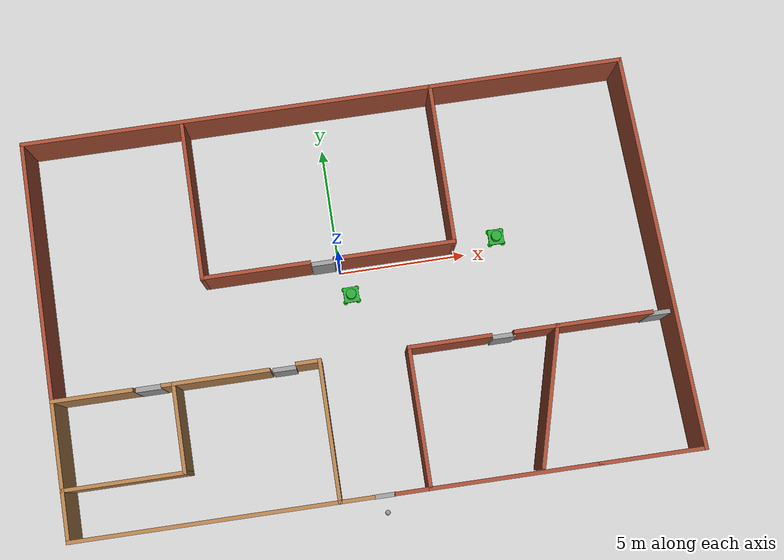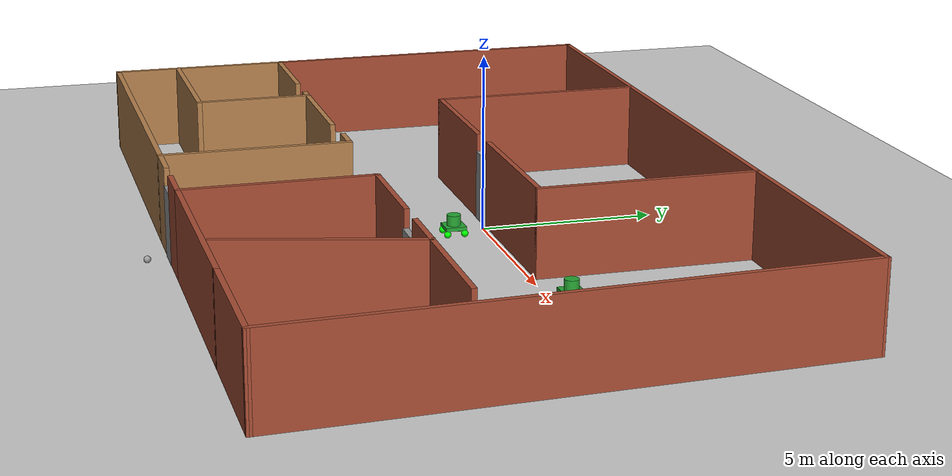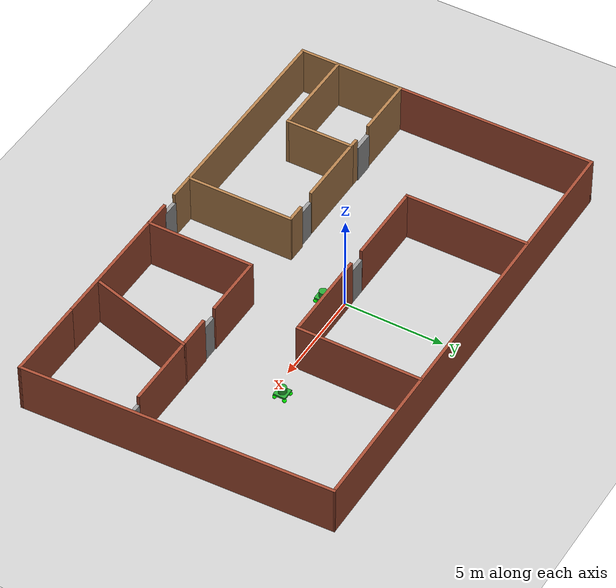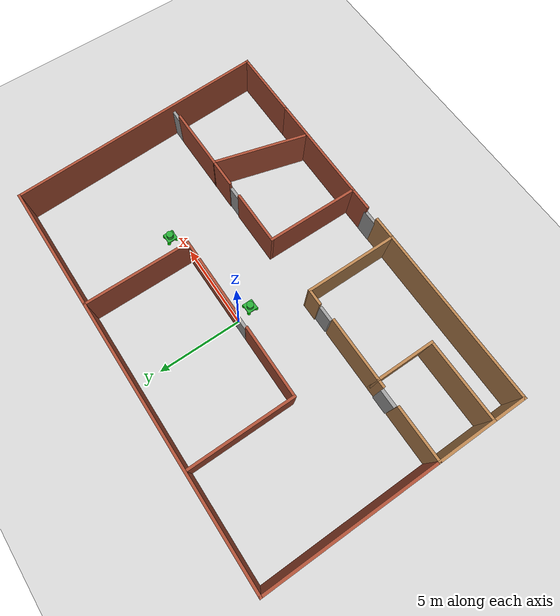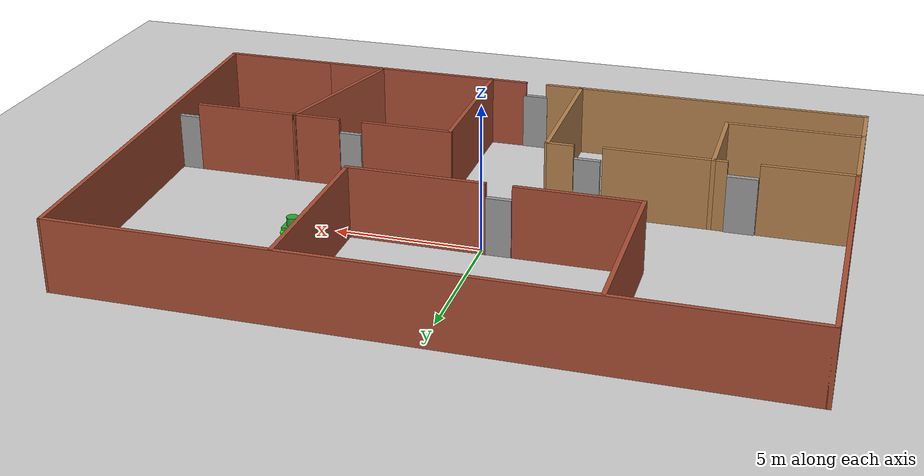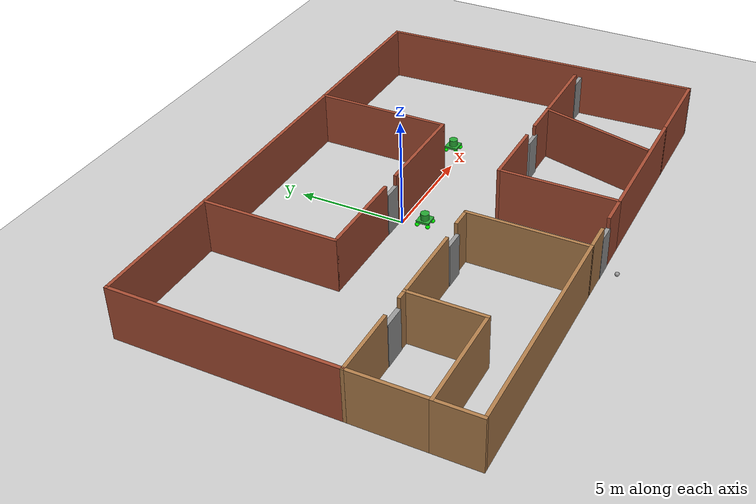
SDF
<sdf version="1.7">
 <world name="default">
  <plugin name="welcome_message" filename="libwelcome_message.so"/>
  <light name="sun" type="directional">
   <pose>0 0 10 0 -0 0</pose>
   <diffuse>0.8 0.8 0.8 1</diffuse>
   <specular>0.2 0.2 0.2 1</specular>
   <attenuation>
    <range>1000</range>
    <constant>0.9</constant>
    <linear>0.01</linear>
    <quadratic>0.001</quadratic>
   </attenuation>
   <direction>-0.5 0.1 -0.9</direction>
   <spot><inner_angle>0</inner_angle><outer_angle>0</outer_angle><falloff>0</falloff></spot>
  </light>
  <model name="ground_plane">
   <static>1</static>
   <link name="link">
    <collision name="collision">
     <geometry><plane><normal>0 0 1</normal><size>100 100</size></plane></geometry>
     <surface>
      <contact><collide_bitmask>65535</collide_bitmask></contact>
      <friction><ode><mu>100</mu><mu2>50</mu2></ode></friction>
     </surface>
    </collision>
    <visual name="visual">
     <cast_shadows>0</cast_shadows>
     <geometry><plane><normal>0 0 1</normal><size>100 100</size></plane></geometry>
     <material>
      <script><uri>file://media/materials/scripts/gazebo.material</uri><name>Gazebo/Grey</name></script>
     </material>
    </visual>
   </link>
  </model>
  <gravity>0 0 -9.8</gravity>
  <magnetic_field>6e-06 2.3e-05 -4.2e-05</magnetic_field>
  <atmosphere type="adiabatic"/>
  <physics type="ode">
   <max_step_size>0.001</max_step_size>
   <real_time_factor>1</real_time_factor>
   <real_time_update_rate>1000</real_time_update_rate>
  </physics>
  <scene><ambient>0.4 0.4 0.4 1</ambient><background>0.7 0.7 0.7 1</background><shadows>1</shadows></scene>
  <spherical_coordinates>
   <surface_model>EARTH_WGS84</surface_model>
   <latitude_deg>0</latitude_deg>
   <longitude_deg>0</longitude_deg>
   <elevation>0</elevation>
   <heading_deg>0</heading_deg>
  </spherical_coordinates>
  <model name="Building">
   <pose>0.56851 -1.28021 0 0 -0 0</pose>
   <link name="Door_0">
    <collision name="Door_0_Collision">
     <geometry><box><size>1.03059 0.2 2</size></box></geometry>
     <pose>0 0 1 0 -0 0</pose>
    </collision>
    <visual name="Door_0_Visual">
     <pose>0 0 1 0 -0 0</pose>
     <geometry><box><size>1.03059 0.2 2</size></box></geometry>
     <material>
      <script><uri>file://media/materials/scripts/gazebo.material</uri><name>Gazebo/Grey</name></script>
     </material>
    </visual>
    <pose>-8.38918 -2.3477 0 0 -0 0</pose>
   </link>
   <link name="Door_1">
    <collision name="Door_1_Collision">
     <geometry><box><size>0.9 0.17 2</size></box></geometry>
     <pose>0 0 1 0 -0 0</pose>
    </collision>
    <visual name="Door_1_Visual">
     <pose>0 0 1 0 -0 0</pose>
     <geometry><box><size>0.9 0.17 2</size></box></geometry>
     <material>
      <script><uri>file://media/materials/scripts/gazebo.material</uri><name>Gazebo/Grey</name></script>
     </material>
    </visual>
    <pose>-3.20947 -2.363 0 0 -0 0</pose>
   </link>
   <link name="Door_3">
    <collision name="Door_3_Collision">
     <geometry><box><size>0.9 0.17 2</size></box></geometry>
     <pose>0 0 1 0 -0 0</pose>
    </collision>
    <visual name="Door_3_Visual">
     <pose>0 0 1 0 -0 0</pose>
     <geometry><box><size>0.9 0.17 2</size></box></geometry>
     <material>
      <script><uri>file://media/materials/scripts/gazebo.material</uri><name>Gazebo/Grey</name></script>
     </material>
    </visual>
    <pose>-0.116131 -7.63713 0 0 -0 0</pose>
   </link>
   <link name="Door_4">
    <collision name="Door_4_Collision">
     <geometry><box><size>0.9 0.17 2</size></box></geometry>
     <pose>0 0 1 0 -0 0</pose>
    </collision>
    <visual name="Door_4_Visual">
     <pose>0 0 1 0 -0 0</pose>
     <geometry><box><size>0.9 0.17 2</size></box></geometry>
     <material>
      <script><uri>file://media/materials/scripts/gazebo.material</uri><name>Gazebo/Grey</name></script>
     </material>
    </visual>
    <pose>5.2614 -2.33035 0 0 -0 0</pose>
   </link>
   <link name="Door_5">
    <collision name="Door_5_Collision">
     <geometry><box><size>0.9 0.17 2</size></box></geometry>
     <pose>0 0 1 0 -0 0</pose>
    </collision>
    <visual name="Door_5_Visual">
     <pose>0 0 1 0 -0 0</pose>
     <geometry><box><size>0.9 0.17 2</size></box></geometry>
     <material>
      <script><uri>file://media/materials/scripts/gazebo.material</uri><name>Gazebo/Grey</name></script>
     </material>
    </visual>
    <pose>11.2932 -2.30572 0 0 -0 0</pose>
   </link>
   <link name="Door_6">
    <collision name="Door_6_Collision">
     <geometry><box><size>0.9 0.17 2</size></box></geometry>
     <pose>0 0 1 0 -0 0</pose>
    </collision>
    <visual name="Door_6_Visual">
     <pose>0 0 1 0 -0 0</pose>
     <geometry><box><size>0.9 0.17 2</size></box></geometry>
     <material>
      <script><uri>file://media/materials/scripts/gazebo.material</uri><name>Gazebo/Grey</name></script>
     </material>
    </visual>
    <pose>-1.17075 1.46324 0 0 -0 0</pose>
   </link>
   <link name="Wall_0">
    <collision name="Wall_0_Collision">
     <geometry><box><size>10.15 0.15 2.5</size></box></geometry>
     <pose>0 0 1.25 0 -0 0</pose>
    </collision>
    <visual name="Wall_0_Visual">
     <pose>0 0 1.25 0 -0 0</pose>
     <geometry><box><size>10.15 0.15 2.5</size></box></geometry>
     <material>
      <script><uri>file://media/materials/scripts/gazebo.material</uri><name>Gazebo/Bricks</name></script>
      <ambient>1 1 1 1</ambient>
     </material>
     <meta><layer>0</layer></meta>
    </visual>
    <pose>-12.0015 2.637 0 0 -0 1.5708</pose>
   </link>
   <link name="Wall_10">
    <collision name="Wall_10_Collision">
     <geometry><box><size>3.5 0.15 2.5</size></box></geometry>
     <pose>0 0 1.25 0 -0 0</pose>
    </collision>
    <visual name="Wall_10_Visual">
     <pose>0 0 1.25 0 -0 0</pose>
     <geometry><box><size>3.5 0.15 2.5</size></box></geometry>
     <material>
      <script><uri>file://media/materials/scripts/gazebo.material</uri><name>Gazebo/Wood</name></script>
      <ambient>1 1 1 1</ambient>
     </material>
     <meta><layer>0</layer></meta>
    </visual>
    <pose>-7.40147 -4.038 0 0 -0 -1.5708</pose>
   </link>
   <link name="Wall_11">
    <collision name="Wall_11_Collision">
     <geometry><box><size>4.75 0.15 2.5</size></box></geometry>
     <pose>0 0 1.25 0 -0 0</pose>
    </collision>
    <visual name="Wall_11_Visual">
     <pose>0 0 1.25 0 -0 0</pose>
     <geometry><box><size>4.75 0.15 2.5</size></box></geometry>
     <material>
      <script><uri>file://media/materials/scripts/gazebo.material</uri><name>Gazebo/Wood</name></script>
      <ambient>1 1 1 1</ambient>
     </material>
     <meta><layer>0</layer></meta>
    </visual>
    <pose>-9.70147 -5.713 0 0 -0 3.14159</pose>
   </link>
   <link name="Wall_12">
    <collision name="Wall_12_Collision">
     <geometry><box><size>3.5 0.15 2.5</size></box></geometry>
     <pose>0 0 1.25 0 -0 0</pose>
    </collision>
    <visual name="Wall_12_Visual">
     <pose>0 0 1.25 0 -0 0</pose>
     <geometry><box><size>3.5 0.15 2.5</size></box></geometry>
     <material>
      <script><uri>file://media/materials/scripts/gazebo.material</uri><name>Gazebo/Wood</name></script>
      <ambient>1 1 1 1</ambient>
     </material>
     <meta><layer>0</layer></meta>
    </visual>
    <pose>-12.0015 -4.038 0 0 -0 1.5708</pose>
   </link>
   <link name="Wall_14">
    <collision name="Wall_14_Collision">
     <geometry><box><size>3.75 0.15 2.5</size></box></geometry>
     <pose>0 0 1.25 0 -0 0</pose>
    </collision>
    <visual name="Wall_14_Visual">
     <pose>0 0 1.25 0 -0 0</pose>
     <geometry><box><size>3.75 0.15 2.5</size></box></geometry>
     <material>
      <script><uri>file://media/materials/scripts/gazebo.material</uri><name>Gazebo/Wood</name></script>
      <ambient>1 1 1 1</ambient>
     </material>
     <meta><layer>0</layer></meta>
    </visual>
    <pose>-5.60147 -2.363 0 0 -0 0</pose>
   </link>
   <link name="Wall_16">
    <collision name="Wall_16_Collision">
     <geometry><box><size>1 0.15 2.5</size></box></geometry>
     <pose>0 0 1.25 0 -0 0</pose>
    </collision>
    <visual name="Wall_16_Visual">
     <pose>0 0 1.25 0 -0 0</pose>
     <geometry><box><size>1 0.15 2.5</size></box></geometry>
     <material>
      <script><uri>file://media/materials/scripts/gazebo.material</uri><name>Gazebo/Wood</name></script>
      <ambient>1 1 1 1</ambient>
     </material>
     <meta><layer>0</layer></meta>
    </visual>
    <pose>-2.26166 -2.28491 0 0 -0 -0.000212</pose>
   </link>
   <link name="Wall_17">
    <collision name="Wall_17_Collision">
     <geometry><box><size>5.5 0.15 2.5</size></box></geometry>
     <pose>0 0 1.25 0 -0 0</pose>
    </collision>
    <visual name="Wall_17_Visual">
     <pose>0 0 1.25 0 -0 0</pose>
     <geometry><box><size>5.5 0.15 2.5</size></box></geometry>
     <material>
      <script><uri>file://media/materials/scripts/gazebo.material</uri><name>Gazebo/Wood</name></script>
      <ambient>1 1 1 1</ambient>
     </material>
     <meta><layer>0</layer></meta>
    </visual>
    <pose>-1.83397 -4.96 0 0 -0 -1.56986</pose>
   </link>
   <link name="Wall_18">
    <collision name="Wall_18_Collision">
     <geometry><box><size>10.32 0.15 2.5</size></box></geometry>
     <pose>0 0 1.25 0 -0 0</pose>
    </collision>
    <visual name="Wall_18_Visual">
     <pose>0 0 1.25 0 -0 0</pose>
     <geometry><box><size>10.32 0.15 2.5</size></box></geometry>
     <material>
      <script><uri>file://media/materials/scripts/gazebo.material</uri><name>Gazebo/Wood</name></script>
      <ambient>1 1 1 1</ambient>
     </material>
     <meta><layer>0</layer></meta>
    </visual>
    <pose>-6.91647 -7.635 0 0 -0 3.14159</pose>
   </link>
   <link name="Wall_19">
    <collision name="Wall_19_Collision">
     <geometry><box><size>2.07291 0.15 2.5</size></box></geometry>
     <pose>0 0 1.25 0 -0 0</pose>
    </collision>
    <visual name="Wall_19_Visual">
     <pose>0 0 1.25 0 -0 0</pose>
     <geometry><box><size>2.07291 0.15 2.5</size></box></geometry>
     <material>
      <script><uri>file://media/materials/scripts/gazebo.material</uri><name>Gazebo/Wood</name></script>
      <ambient>1 1 1 1</ambient>
     </material>
     <meta><layer>0</layer></meta>
    </visual>
    <pose>-12.0015 -6.674 0 0 -0 1.5708</pose>
   </link>
   <link name="Wall_2">
    <collision name="Wall_2_Collision">
     <geometry><box><size>3.15035 0.15 2.5</size></box></geometry>
     <pose>0 0 1.25 0 -0 0</pose>
    </collision>
    <visual name="Wall_2_Visual">
     <pose>0 0 1.25 0 -0 0</pose>
     <geometry><box><size>3.15035 0.15 2.5</size></box></geometry>
     <material>
      <script><uri>file://media/materials/scripts/gazebo.material</uri><name>Gazebo/Wood</name></script>
      <ambient>1 1 1 1</ambient>
     </material>
     <meta><layer>0</layer></meta>
    </visual>
    <pose>-10.5015 -2.363 0 0 -0 0</pose>
   </link>
   <link name="Wall_21">
    <collision name="Wall_21_Collision">
     <geometry><box><size>5.49787 0.15 2.5</size></box></geometry>
     <pose>0 0 1.25 0 -0 0</pose>
    </collision>
    <visual name="Wall_21_Visual">
     <pose>0 0 1.25 0 -0 0</pose>
     <geometry><box><size>5.49787 0.15 2.5</size></box></geometry>
     <material>
      <script><uri>file://media/materials/scripts/gazebo.material</uri><name>Gazebo/Bricks</name></script>
      <ambient>1 1 1 1</ambient>
     </material>
     <meta><layer>0</layer></meta>
    </visual>
    <pose>1.58253 -4.961 0 0 -0 1.5708</pose>
   </link>
   <link name="Wall_22">
    <collision name="Wall_22_Collision">
     <geometry><box><size>3.25 0.15 2.5</size></box></geometry>
     <pose>0 0 1.25 0 -0 0</pose>
    </collision>
    <visual name="Wall_22_Visual">
     <pose>0 0 1.25 0 -0 0</pose>
     <geometry><box><size>3.25 0.15 2.5</size></box></geometry>
     <material>
      <script><uri>file://media/materials/scripts/gazebo.material</uri><name>Gazebo/Bricks</name></script>
      <ambient>1 1 1 1</ambient>
     </material>
     <meta><layer>0</layer></meta>
    </visual>
    <pose>3.13228 -2.28707 0 0 -0 -4.2e-05</pose>
   </link>
   <link name="Wall_24">
    <collision name="Wall_24_Collision">
     <geometry><box><size>1.395 0.15 2.5</size></box></geometry>
     <pose>0 0 1.25 0 -0 0</pose>
    </collision>
    <visual name="Wall_24_Visual">
     <pose>0 0 1.25 0 -0 0</pose>
     <geometry><box><size>1.395 0.15 2.5</size></box></geometry>
     <material>
      <script><uri>file://media/materials/scripts/gazebo.material</uri><name>Gazebo/Wood</name></script>
      <ambient>1 1 1 1</ambient>
     </material>
     <meta><layer>0</layer></meta>
    </visual>
    <pose>-1.20897 -7.635 0 0 -0 0</pose>
   </link>
   <link name="Wall_26">
    <collision name="Wall_26_Collision">
     <geometry><box><size>1.42412 0.15 2.5</size></box></geometry>
     <pose>0 0 1.25 0 -0 0</pose>
    </collision>
    <visual name="Wall_26_Visual">
     <pose>0 0 1.25 0 -0 0</pose>
     <geometry><box><size>1.42412 0.15 2.5</size></box></geometry>
     <material>
      <script><uri>file://media/materials/scripts/gazebo.material</uri><name>Gazebo/Bricks</name></script>
      <ambient>1 1 1 1</ambient>
     </material>
     <meta><layer>0</layer></meta>
    </visual>
    <pose>0.945527 -7.636 0 0 -0 0.00157</pose>
   </link>
   <link name="Wall_28">
    <collision name="Wall_28_Collision">
     <geometry><box><size>1.75 0.15 2.5</size></box></geometry>
     <pose>0 0 1.25 0 -0 0</pose>
    </collision>
    <visual name="Wall_28_Visual">
     <pose>0 0 1.25 0 -0 0</pose>
     <geometry><box><size>1.75 0.15 2.5</size></box></geometry>
     <material>
      <script><uri>file://media/materials/scripts/gazebo.material</uri><name>Gazebo/Bricks</name></script>
      <ambient>1 1 1 1</ambient>
     </material>
     <meta><layer>0</layer></meta>
    </visual>
    <pose>6.46195 -2.28758 0 0 -0 0</pose>
   </link>
   <link name="Wall_30">
    <collision name="Wall_30_Collision">
     <geometry><box><size>6.5664 0.15 2.5</size></box></geometry>
     <pose>0 0 1.25 0 -0 0</pose>
    </collision>
    <visual name="Wall_30_Visual">
     <pose>0 0 1.25 0 -0 0</pose>
     <geometry><box><size>6.5664 0.15 2.5</size></box></geometry>
     <material>
      <script><uri>file://media/materials/scripts/gazebo.material</uri><name>Gazebo/Bricks</name></script>
      <ambient>1 1 1 1</ambient>
     </material>
     <meta><layer>0</layer></meta>
    </visual>
    <pose>4.79053 -7.636 0 0 -0 -0.000312</pose>
   </link>
   <link name="Wall_32">
    <collision name="Wall_32_Collision">
     <geometry><box><size>5.5 0.15 2.5</size></box></geometry>
     <pose>0 0 1.25 0 -0 0</pose>
    </collision>
    <visual name="Wall_32_Visual">
     <pose>0 0 1.25 0 -0 0</pose>
     <geometry><box><size>5.5 0.15 2.5</size></box></geometry>
     <material>
      <script><uri>file://media/materials/scripts/gazebo.material</uri><name>Gazebo/Bricks</name></script>
      <ambient>1 1 1 1</ambient>
     </material>
     <meta><layer>0</layer></meta>
    </visual>
    <pose>6.56961 -4.87143 0 0 -0 -1.8326</pose>
   </link>
   <link name="Wall_34">
    <collision name="Wall_34_Collision">
     <geometry><box><size>23.5 0.15 2.5</size></box></geometry>
     <pose>0 0 1.25 0 -0 0</pose>
    </collision>
    <visual name="Wall_34_Visual">
     <pose>0 0 1.25 0 -0 0</pose>
     <geometry><box><size>23.5 0.15 2.5</size></box></geometry>
     <material>
      <script><uri>file://media/materials/scripts/gazebo.material</uri><name>Gazebo/Bricks</name></script>
      <ambient>1 1 1 1</ambient>
     </material>
     <meta><layer>0</layer></meta>
    </visual>
    <pose>-0.326473 7.637 0 0 -0 0</pose>
   </link>
   <link name="Wall_35">
    <collision name="Wall_35_Collision">
     <geometry><box><size>15.4378 0.15 2.5</size></box></geometry>
     <pose>0 0 1.25 0 -0 0</pose>
    </collision>
    <visual name="Wall_35_Visual">
     <pose>0 0 1.25 0 -0 0</pose>
     <geometry><box><size>15.4378 0.15 2.5</size></box></geometry>
     <material>
      <script><uri>file://media/materials/scripts/gazebo.material</uri><name>Gazebo/Bricks</name></script>
      <ambient>1 1 1 1</ambient>
     </material>
     <meta><layer>0</layer></meta>
    </visual>
    <pose>11.6735 -0 0 0 -0 -1.52827</pose>
   </link>
   <link name="Wall_36">
    <collision name="Wall_36_Collision">
     <geometry><box><size>4.15 0.15 2.5</size></box></geometry>
     <pose>0 0 1.25 0 -0 0</pose>
    </collision>
    <visual name="Wall_36_Visual">
     <pose>0 0 1.25 0 -0 0</pose>
     <geometry><box><size>4.15 0.15 2.5</size></box></geometry>
     <material>
      <script><uri>file://media/materials/scripts/gazebo.material</uri><name>Gazebo/Bricks</name></script>
      <ambient>1 1 1 1</ambient>
     </material>
     <meta><layer>0</layer></meta>
    </visual>
    <pose>9.99853 -7.637 0 0 -0 3.14159</pose>
   </link>
   <link name="Wall_39">
    <collision name="Wall_39_Collision">
     <geometry><box><size>3.75 0.15 2.5</size></box></geometry>
     <pose>0 0 1.25 0 -0 0</pose>
    </collision>
    <visual name="Wall_39_Visual">
     <pose>0 0 1.25 0 -0 0</pose>
     <geometry><box><size>3.75 0.15 2.5</size></box></geometry>
     <material>
      <script><uri>file://media/materials/scripts/gazebo.material</uri><name>Gazebo/Bricks</name></script>
      <ambient>1 1 1 1</ambient>
     </material>
     <meta><layer>0</layer></meta>
    </visual>
    <pose>9.06195 -2.28758 0 0 -0 0</pose>
   </link>
   <link name="Wall_4">
    <collision name="Wall_4_Collision">
     <geometry><box><size>0.55 0.15 2.5</size></box></geometry>
     <pose>0 0 1.25 0 -0 0</pose>
    </collision>
    <visual name="Wall_4_Visual">
     <pose>0 0 1.25 0 -0 0</pose>
     <geometry><box><size>0.55 0.15 2.5</size></box></geometry>
     <material>
      <script><uri>file://media/materials/scripts/gazebo.material</uri><name>Gazebo/Wood</name></script>
      <ambient>1 1 1 1</ambient>
     </material>
     <meta><layer>0</layer></meta>
    </visual>
    <pose>-7.60147 -2.363 0 0 -0 0</pose>
   </link>
   <link name="Wall_41">
    <collision name="Wall_41_Collision">
     <geometry><box><size>6.25 0.15 2.5</size></box></geometry>
     <pose>0 0 1.25 0 -0 0</pose>
    </collision>
    <visual name="Wall_41_Visual">
     <pose>0 0 1.25 0 -0 0</pose>
     <geometry><box><size>6.25 0.15 2.5</size></box></geometry>
     <material>
      <script><uri>file://media/materials/scripts/gazebo.material</uri><name>Gazebo/Bricks</name></script>
      <ambient>1 1 1 1</ambient>
     </material>
     <meta><layer>0</layer></meta>
    </visual>
    <pose>-5.81016 4.52152 0 0 -0 -1.5708</pose>
   </link>
   <link name="Wall_42">
    <collision name="Wall_42_Collision">
     <geometry><box><size>4.25 0.15 2.5</size></box></geometry>
     <pose>0 0 1.25 0 -0 0</pose>
    </collision>
    <visual name="Wall_42_Visual">
     <pose>0 0 1.25 0 -0 0</pose>
     <geometry><box><size>4.25 0.15 2.5</size></box></geometry>
     <material>
      <script><uri>file://media/materials/scripts/gazebo.material</uri><name>Gazebo/Bricks</name></script>
      <ambient>1 1 1 1</ambient>
     </material>
     <meta><layer>0</layer></meta>
    </visual>
    <pose>-3.76016 1.47152 0 0 -0 0</pose>
   </link>
   <link name="Wall_44">
    <collision name="Wall_44_Collision">
     <geometry><box><size>4.75 0.15 2.5</size></box></geometry>
     <pose>0 0 1.25 0 -0 0</pose>
    </collision>
    <visual name="Wall_44_Visual">
     <pose>0 0 1.25 0 -0 0</pose>
     <geometry><box><size>4.75 0.15 2.5</size></box></geometry>
     <material>
      <script><uri>file://media/materials/scripts/gazebo.material</uri><name>Gazebo/Bricks</name></script>
      <ambient>1 1 1 1</ambient>
     </material>
     <meta><layer>0</layer></meta>
    </visual>
    <pose>1.60457 1.48482 0 0 -0 0</pose>
   </link>
   <link name="Wall_45">
    <collision name="Wall_45_Collision">
     <geometry><box><size>6.25 0.15 2.5</size></box></geometry>
     <pose>0 0 1.25 0 -0 0</pose>
    </collision>
    <visual name="Wall_45_Visual">
     <pose>0 0 1.25 0 -0 0</pose>
     <geometry><box><size>6.25 0.15 2.5</size></box></geometry>
     <material>
      <script><uri>file://media/materials/scripts/gazebo.material</uri><name>Gazebo/Bricks</name></script>
      <ambient>1 1 1 1</ambient>
     </material>
     <meta><layer>0</layer></meta>
    </visual>
    <pose>3.90457 4.53482 0 0 -0 1.5708</pose>
   </link>
   <static>1</static>
  </model>
  <model name="HumanoidRobot_0">
   <link name="link_0">
    <inertial>
     <mass>1</mass>
     <inertia>
      <ixx>0.166667</ixx>
      <ixy>0</ixy>
      <ixz>0</ixz>
      <iyy>0.166667</iyy>
      <iyz>0</iyz>
      <izz>0.166667</izz>
     </inertia>
    </inertial>
    <pose>0 0 0.066667 0 -0 0</pose>
    <visual name="visual">
     <geometry><box><size>0.6 0.6 0.1</size></box></geometry>
     <material>
      <lighting>1</lighting>
      <script><uri>file://media/materials/scripts/gazebo.material</uri><name>Gazebo/Green</name></script>
      <shader type="pixel"><normal_map>__default__</normal_map></shader>
      <ambient>0 1 0 1</ambient>
      <diffuse>0.7 0.7 0.7 1</diffuse>
      <specular>0.01 0.01 0.01 1</specular>
      <emissive>0 0 0 1</emissive>
     </material>
    </visual>
    <collision name="collision">
     <geometry><box><size>0.6 0.6 0.1</size></box></geometry>
     <surface>
      <friction>
       <ode><mu>1</mu><mu2>1</mu2><fdir1>0 0 0</fdir1><slip1>0</slip1><slip2>0</slip2></ode>
       <torsional>
        <coefficient>1</coefficient>
        <patch_radius>0</patch_radius>
        <surface_radius>0</surface_radius>
        <use_patch_radius>1</use_patch_radius>
        <ode><slip>0</slip></ode>
       </torsional>
      </friction>
      <bounce><restitution_coefficient>0</restitution_coefficient><threshold>1e+06</threshold></bounce>
      <contact>
       <collide_without_contact>0</collide_without_contact>
       <collide_without_contact_bitmask>1</collide_without_contact_bitmask>
       <collide_bitmask>1</collide_bitmask>
       <ode>
        <soft_cfm>0</soft_cfm>
        <soft_erp>0.2</soft_erp>
        <kp>1e+13</kp>
        <kd>1</kd>
        <max_vel>0.01</max_vel>
        <min_depth>0</min_depth>
       </ode>
       <bullet>
        <split_impulse>1</split_impulse>
        <split_impulse_penetration_threshold>-0.01</split_impulse_penetration_threshold>
        <soft_cfm>0</soft_cfm>
        <soft_erp>0.2</soft_erp>
        <kp>1e+13</kp>
        <kd>1</kd>
       </bullet>
      </contact>
     </surface>
    </collision>
   </link>
   <link name="link_1">
    <inertial>
     <mass>1</mass>
     <inertia><ixx>0.1</ixx><ixy>0</ixy><ixz>0</ixz><iyy>0.1</iyy><iyz>0</iyz><izz>0.1</izz></inertia>
    </inertial>
    <pose>0.25 0.25 -0.083333 0 -0 0</pose>
    <visual name="visual">
     <geometry><sphere><radius>0.1</radius></sphere></geometry>
     <material>
      <lighting>1</lighting>
      <script><uri>file://media/materials/scripts/gazebo.material</uri><name>Gazebo/Grey</name></script>
      <shader type="pixel"><normal_map>__default__</normal_map></shader>
      <ambient>0 1 0 1</ambient>
      <diffuse>0.7 0.7 0.7 1</diffuse>
      <specular>0.01 0.01 0.01 1</specular>
      <emissive>0 0 0 1</emissive>
     </material>
    </visual>
    <collision name="collision">
     <geometry><sphere><radius>0.1</radius></sphere></geometry>
     <surface>
      <friction>
       <ode><mu>1</mu><mu2>1</mu2><fdir1>0 0 0</fdir1><slip1>0</slip1><slip2>0</slip2></ode>
       <torsional>
        <coefficient>1</coefficient>
        <patch_radius>0</patch_radius>
        <surface_radius>0</surface_radius>
        <use_patch_radius>1</use_patch_radius>
        <ode><slip>0</slip></ode>
       </torsional>
      </friction>
      <bounce><restitution_coefficient>0</restitution_coefficient><threshold>1e+06</threshold></bounce>
      <contact>
       <collide_without_contact>0</collide_without_contact>
       <collide_without_contact_bitmask>1</collide_without_contact_bitmask>
       <collide_bitmask>1</collide_bitmask>
       <ode>
        <soft_cfm>0</soft_cfm>
        <soft_erp>0.2</soft_erp>
        <kp>1e+13</kp>
        <kd>1</kd>
        <max_vel>0.01</max_vel>
        <min_depth>0</min_depth>
       </ode>
       <bullet>
        <split_impulse>1</split_impulse>
        <split_impulse_penetration_threshold>-0.01</split_impulse_penetration_threshold>
        <soft_cfm>0</soft_cfm>
        <soft_erp>0.2</soft_erp>
        <kp>1e+13</kp>
        <kd>1</kd>
       </bullet>
      </contact>
     </surface>
    </collision>
   </link>
   <link name="link_1_clone">
    <inertial>
     <mass>1</mass>
     <inertia><ixx>0.1</ixx><ixy>0</ixy><ixz>0</ixz><iyy>0.1</iyy><iyz>0</iyz><izz>0.1</izz></inertia>
    </inertial>
    <pose>0.25 -0.25 -0.083333 0 -0 0</pose>
    <visual name="visual">
     <geometry><sphere><radius>0.1</radius></sphere></geometry>
     <material>
      <lighting>1</lighting>
      <script><uri>file://media/materials/scripts/gazebo.material</uri><name>Gazebo/Grey</name></script>
      <shader type="pixel"><normal_map>__default__</normal_map></shader>
      <ambient>0 1 0 1</ambient>
      <diffuse>0.7 0.7 0.7 1</diffuse>
      <specular>0.01 0.01 0.01 1</specular>
      <emissive>0 0 0 1</emissive>
     </material>
    </visual>
    <collision name="collision">
     <geometry><sphere><radius>0.1</radius></sphere></geometry>
     <surface>
      <friction>
       <ode><mu>1</mu><mu2>1</mu2><fdir1>0 0 0</fdir1><slip1>0</slip1><slip2>0</slip2></ode>
       <torsional>
        <coefficient>1</coefficient>
        <patch_radius>0</patch_radius>
        <surface_radius>0</surface_radius>
        <use_patch_radius>1</use_patch_radius>
        <ode><slip>0</slip></ode>
       </torsional>
      </friction>
      <bounce><restitution_coefficient>0</restitution_coefficient><threshold>1e+06</threshold></bounce>
      <contact>
       <collide_without_contact>0</collide_without_contact>
       <collide_without_contact_bitmask>1</collide_without_contact_bitmask>
       <collide_bitmask>1</collide_bitmask>
       <ode>
        <soft_cfm>0</soft_cfm>
        <soft_erp>0.2</soft_erp>
        <kp>1e+13</kp>
        <kd>1</kd>
        <max_vel>0.01</max_vel>
        <min_depth>0</min_depth>
       </ode>
       <bullet>
        <split_impulse>1</split_impulse>
        <split_impulse_penetration_threshold>-0.01</split_impulse_penetration_threshold>
        <soft_cfm>0</soft_cfm>
        <soft_erp>0.2</soft_erp>
        <kp>1e+13</kp>
        <kd>1</kd>
       </bullet>
      </contact>
     </surface>
    </collision>
   </link>
   <link name="link_1_clone_clone">
    <inertial>
     <mass>1</mass>
     <inertia><ixx>0.1</ixx><ixy>0</ixy><ixz>0</ixz><iyy>0.1</iyy><iyz>0</iyz><izz>0.1</izz></inertia>
    </inertial>
    <pose>-0.25 -0.25 -0.083333 0 -0 0</pose>
    <visual name="visual">
     <geometry><sphere><radius>0.1</radius></sphere></geometry>
     <material>
      <lighting>1</lighting>
      <script><uri>file://media/materials/scripts/gazebo.material</uri><name>Gazebo/Grey</name></script>
      <shader type="pixel"><normal_map>__default__</normal_map></shader>
      <ambient>0 1 0 1</ambient>
      <diffuse>0.7 0.7 0.7 1</diffuse>
      <specular>0.01 0.01 0.01 1</specular>
      <emissive>0 0 0 1</emissive>
     </material>
    </visual>
    <collision name="collision">
     <geometry><sphere><radius>0.1</radius></sphere></geometry>
     <surface>
      <friction>
       <ode><mu>1</mu><mu2>1</mu2><fdir1>0 0 0</fdir1><slip1>0</slip1><slip2>0</slip2></ode>
       <torsional>
        <coefficient>1</coefficient>
        <patch_radius>0</patch_radius>
        <surface_radius>0</surface_radius>
        <use_patch_radius>1</use_patch_radius>
        <ode><slip>0</slip></ode>
       </torsional>
      </friction>
      <bounce><restitution_coefficient>0</restitution_coefficient><threshold>1e+06</threshold></bounce>
      <contact>
       <collide_without_contact>0</collide_without_contact>
       <collide_without_contact_bitmask>1</collide_without_contact_bitmask>
       <collide_bitmask>1</collide_bitmask>
       <ode>
        <soft_cfm>0</soft_cfm>
        <soft_erp>0.2</soft_erp>
        <kp>1e+13</kp>
        <kd>1</kd>
        <max_vel>0.01</max_vel>
        <min_depth>0</min_depth>
       </ode>
       <bullet>
        <split_impulse>1</split_impulse>
        <split_impulse_penetration_threshold>-0.01</split_impulse_penetration_threshold>
        <soft_cfm>0</soft_cfm>
        <soft_erp>0.2</soft_erp>
        <kp>1e+13</kp>
        <kd>1</kd>
       </bullet>
      </contact>
     </surface>
    </collision>
   </link>
   <link name="link_1_clone_clone_clone">
    <inertial>
     <mass>1</mass>
     <inertia><ixx>0.1</ixx><ixy>0</ixy><ixz>0</ixz><iyy>0.1</iyy><iyz>0</iyz><izz>0.1</izz></inertia>
    </inertial>
    <pose>-0.25 0.25 -0.083333 0 -0 0</pose>
    <visual name="visual">
     <geometry><sphere><radius>0.1</radius></sphere></geometry>
     <material>
      <lighting>1</lighting>
      <script><uri>file://media/materials/scripts/gazebo.material</uri><name>Gazebo/Grey</name></script>
      <shader type="pixel"><normal_map>__default__</normal_map></shader>
      <ambient>0 1 0 1</ambient>
      <diffuse>0.7 0.7 0.7 1</diffuse>
      <specular>0.01 0.01 0.01 1</specular>
      <emissive>0 0 0 1</emissive>
     </material>
    </visual>
    <collision name="collision">
     <geometry><sphere><radius>0.1</radius></sphere></geometry>
     <surface>
      <friction>
       <ode><mu>1</mu><mu2>1</mu2><fdir1>0 0 0</fdir1><slip1>0</slip1><slip2>0</slip2></ode>
       <torsional>
        <coefficient>1</coefficient>
        <patch_radius>0</patch_radius>
        <surface_radius>0</surface_radius>
        <use_patch_radius>1</use_patch_radius>
        <ode><slip>0</slip></ode>
       </torsional>
      </friction>
      <bounce><restitution_coefficient>0</restitution_coefficient><threshold>1e+06</threshold></bounce>
      <contact>
       <collide_without_contact>0</collide_without_contact>
       <collide_without_contact_bitmask>1</collide_without_contact_bitmask>
       <collide_bitmask>1</collide_bitmask>
       <ode>
        <soft_cfm>0</soft_cfm>
        <soft_erp>0.2</soft_erp>
        <kp>1e+13</kp>
        <kd>1</kd>
        <max_vel>0.01</max_vel>
        <min_depth>0</min_depth>
       </ode>
       <bullet>
        <split_impulse>1</split_impulse>
        <split_impulse_penetration_threshold>-0.01</split_impulse_penetration_threshold>
        <soft_cfm>0</soft_cfm>
        <soft_erp>0.2</soft_erp>
        <kp>1e+13</kp>
        <kd>1</kd>
       </bullet>
      </contact>
     </surface>
    </collision>
   </link>
   <link name="link_2">
    <inertial>
     <mass>1</mass>
     <inertia><ixx>0.145833</ixx><ixy>0</ixy><ixz>0</ixz><iyy>0.145833</iyy><iyz>0</iyz><izz>0.125</izz></inertia>
    </inertial>
    <pose>0 0 0.266667 0 -0 0</pose>
    <visual name="visual">
     <geometry><cylinder><radius>0.2</radius><length>0.3</length></cylinder></geometry>
     <material>
      <lighting>1</lighting>
      <script><uri>file://media/materials/scripts/gazebo.material</uri><name>Gazebo/Green</name></script>
      <shader type="pixel"><normal_map>__default__</normal_map></shader>
      <ambient>0 1 0 1</ambient>
      <diffuse>0.7 0.7 0.7 1</diffuse>
      <specular>0.01 0.01 0.01 1</specular>
      <emissive>0 0 0 1</emissive>
     </material>
    </visual>
    <collision name="collision">
     <geometry><cylinder><radius>0.2</radius><length>0.3</length></cylinder></geometry>
     <surface>
      <friction>
       <ode><mu>1</mu><mu2>1</mu2><fdir1>0 0 0</fdir1><slip1>0</slip1><slip2>0</slip2></ode>
       <torsional>
        <coefficient>1</coefficient>
        <patch_radius>0</patch_radius>
        <surface_radius>0</surface_radius>
        <use_patch_radius>1</use_patch_radius>
        <ode><slip>0</slip></ode>
       </torsional>
      </friction>
      <bounce><restitution_coefficient>0</restitution_coefficient><threshold>1e+06</threshold></bounce>
      <contact>
       <collide_without_contact>0</collide_without_contact>
       <collide_without_contact_bitmask>1</collide_without_contact_bitmask>
       <collide_bitmask>1</collide_bitmask>
       <ode>
        <soft_cfm>0</soft_cfm>
        <soft_erp>0.2</soft_erp>
        <kp>1e+13</kp>
        <kd>1</kd>
        <max_vel>0.01</max_vel>
        <min_depth>0</min_depth>
       </ode>
       <bullet>
        <split_impulse>1</split_impulse>
        <split_impulse_penetration_threshold>-0.01</split_impulse_penetration_threshold>
        <soft_cfm>0</soft_cfm>
        <soft_erp>0.2</soft_erp>
        <kp>1e+13</kp>
        <kd>1</kd>
       </bullet>
      </contact>
     </surface>
    </collision>
   </link>
   <joint name="link_0_JOINT_0" type="ball">
    <parent>link_0</parent>
    <child>link_1_clone_clone_clone</child>
    <physics>
     <ode><limit><cfm>0</cfm><erp>0.2</erp></limit><suspension><cfm>0</cfm><erp>0.2</erp></suspension></ode>
    </physics>
   </joint>
   <joint name="link_0_JOINT_1" type="ball">
    <parent>link_0</parent>
    <child>link_1_clone_clone</child>
    <physics>
     <ode><limit><cfm>0</cfm><erp>0.2</erp></limit><suspension><cfm>0</cfm><erp>0.2</erp></suspension></ode>
    </physics>
   </joint>
   <joint name="link_0_JOINT_2" type="ball">
    <parent>link_0</parent>
    <child>link_1_clone</child>
    <physics>
     <ode><limit><cfm>0</cfm><erp>0.2</erp></limit><suspension><cfm>0</cfm><erp>0.2</erp></suspension></ode>
    </physics>
   </joint>
   <joint name="link_0_JOINT_3" type="ball">
    <parent>link_0</parent>
    <child>link_1</child>
    <physics>
     <ode><limit><cfm>0</cfm><erp>0.2</erp></limit><suspension><cfm>0</cfm><erp>0.2</erp></suspension></ode>
    </physics>
   </joint>
   <joint name="link_0_JOINT_4" type="fixed">
    <parent>link_0</parent>
    <child>link_2</child>
    <physics>
     <ode><limit><cfm>0</cfm><erp>0.2</erp></limit><suspension><cfm>0</cfm><erp>0.2</erp></suspension></ode>
    </physics>
   </joint>
   <static>0</static>
   <pose>0.312706 -0.944679 0.183333 -5e-06 -5e-06 0.012035</pose>
  </model>
  <model name="HumanoidRobot">
   <link name="link_0">
    <inertial>
     <mass>1</mass>
     <inertia>
      <ixx>0.166667</ixx>
      <ixy>0</ixy>
      <ixz>0</ixz>
      <iyy>0.166667</iyy>
      <iyz>0</iyz>
      <izz>0.166667</izz>
     </inertia>
    </inertial>
    <pose>0 0 0.066667 0 -0 0</pose>
    <visual name="visual">
     <geometry><box><size>0.6 0.6 0.1</size></box></geometry>
     <material>
      <lighting>1</lighting>
      <script><uri>file://media/materials/scripts/gazebo.material</uri><name>Gazebo/Green</name></script>
      <shader type="pixel"><normal_map>__default__</normal_map></shader>
      <ambient>0 1 0 1</ambient>
      <diffuse>0.7 0.7 0.7 1</diffuse>
      <specular>0.01 0.01 0.01 1</specular>
      <emissive>0 0 0 1</emissive>
     </material>
    </visual>
    <collision name="collision">
     <geometry><box><size>0.6 0.6 0.1</size></box></geometry>
     <surface>
      <friction>
       <ode><mu>1</mu><mu2>1</mu2><fdir1>0 0 0</fdir1><slip1>0</slip1><slip2>0</slip2></ode>
       <torsional>
        <coefficient>1</coefficient>
        <patch_radius>0</patch_radius>
        <surface_radius>0</surface_radius>
        <use_patch_radius>1</use_patch_radius>
        <ode><slip>0</slip></ode>
       </torsional>
      </friction>
      <bounce><restitution_coefficient>0</restitution_coefficient><threshold>1e+06</threshold></bounce>
      <contact>
       <collide_without_contact>0</collide_without_contact>
       <collide_without_contact_bitmask>1</collide_without_contact_bitmask>
       <collide_bitmask>1</collide_bitmask>
       <ode>
        <soft_cfm>0</soft_cfm>
        <soft_erp>0.2</soft_erp>
        <kp>1e+13</kp>
        <kd>1</kd>
        <max_vel>0.01</max_vel>
        <min_depth>0</min_depth>
       </ode>
       <bullet>
        <split_impulse>1</split_impulse>
        <split_impulse_penetration_threshold>-0.01</split_impulse_penetration_threshold>
        <soft_cfm>0</soft_cfm>
        <soft_erp>0.2</soft_erp>
        <kp>1e+13</kp>
        <kd>1</kd>
       </bullet>
      </contact>
     </surface>
    </collision>
   </link>
   <link name="link_1">
    <inertial>
     <mass>1</mass>
     <inertia><ixx>0.1</ixx><ixy>0</ixy><ixz>0</ixz><iyy>0.1</iyy><iyz>0</iyz><izz>0.1</izz></inertia>
    </inertial>
    <pose>0.25 0.25 -0.083333 0 -0 0</pose>
    <visual name="visual">
     <geometry><sphere><radius>0.1</radius></sphere></geometry>
     <material>
      <lighting>1</lighting>
      <script><uri>file://media/materials/scripts/gazebo.material</uri><name>Gazebo/Grey</name></script>
      <shader type="pixel"><normal_map>__default__</normal_map></shader>
      <ambient>0 1 0 1</ambient>
      <diffuse>0.7 0.7 0.7 1</diffuse>
      <specular>0.01 0.01 0.01 1</specular>
      <emissive>0 0 0 1</emissive>
     </material>
    </visual>
    <collision name="collision">
     <geometry><sphere><radius>0.1</radius></sphere></geometry>
     <surface>
      <friction>
       <ode><mu>1</mu><mu2>1</mu2><fdir1>0 0 0</fdir1><slip1>0</slip1><slip2>0</slip2></ode>
       <torsional>
        <coefficient>1</coefficient>
        <patch_radius>0</patch_radius>
        <surface_radius>0</surface_radius>
        <use_patch_radius>1</use_patch_radius>
        <ode><slip>0</slip></ode>
       </torsional>
      </friction>
      <bounce><restitution_coefficient>0</restitution_coefficient><threshold>1e+06</threshold></bounce>
      <contact>
       <collide_without_contact>0</collide_without_contact>
       <collide_without_contact_bitmask>1</collide_without_contact_bitmask>
       <collide_bitmask>1</collide_bitmask>
       <ode>
        <soft_cfm>0</soft_cfm>
        <soft_erp>0.2</soft_erp>
        <kp>1e+13</kp>
        <kd>1</kd>
        <max_vel>0.01</max_vel>
        <min_depth>0</min_depth>
       </ode>
       <bullet>
        <split_impulse>1</split_impulse>
        <split_impulse_penetration_threshold>-0.01</split_impulse_penetration_threshold>
        <soft_cfm>0</soft_cfm>
        <soft_erp>0.2</soft_erp>
        <kp>1e+13</kp>
        <kd>1</kd>
       </bullet>
      </contact>
     </surface>
    </collision>
   </link>
   <link name="link_1_clone">
    <inertial>
     <mass>1</mass>
     <inertia><ixx>0.1</ixx><ixy>0</ixy><ixz>0</ixz><iyy>0.1</iyy><iyz>0</iyz><izz>0.1</izz></inertia>
    </inertial>
    <pose>0.25 -0.25 -0.083333 0 -0 0</pose>
    <visual name="visual">
     <geometry><sphere><radius>0.1</radius></sphere></geometry>
     <material>
      <lighting>1</lighting>
      <script><uri>file://media/materials/scripts/gazebo.material</uri><name>Gazebo/Grey</name></script>
      <shader type="pixel"><normal_map>__default__</normal_map></shader>
      <ambient>0 1 0 1</ambient>
      <diffuse>0.7 0.7 0.7 1</diffuse>
      <specular>0.01 0.01 0.01 1</specular>
      <emissive>0 0 0 1</emissive>
     </material>
    </visual>
    <collision name="collision">
     <geometry><sphere><radius>0.1</radius></sphere></geometry>
     <surface>
      <friction>
       <ode><mu>1</mu><mu2>1</mu2><fdir1>0 0 0</fdir1><slip1>0</slip1><slip2>0</slip2></ode>
       <torsional>
        <coefficient>1</coefficient>
        <patch_radius>0</patch_radius>
        <surface_radius>0</surface_radius>
        <use_patch_radius>1</use_patch_radius>
        <ode><slip>0</slip></ode>
       </torsional>
      </friction>
      <bounce><restitution_coefficient>0</restitution_coefficient><threshold>1e+06</threshold></bounce>
      <contact>
       <collide_without_contact>0</collide_without_contact>
       <collide_without_contact_bitmask>1</collide_without_contact_bitmask>
       <collide_bitmask>1</collide_bitmask>
       <ode>
        <soft_cfm>0</soft_cfm>
        <soft_erp>0.2</soft_erp>
        <kp>1e+13</kp>
        <kd>1</kd>
        <max_vel>0.01</max_vel>
        <min_depth>0</min_depth>
       </ode>
       <bullet>
        <split_impulse>1</split_impulse>
        <split_impulse_penetration_threshold>-0.01</split_impulse_penetration_threshold>
        <soft_cfm>0</soft_cfm>
        <soft_erp>0.2</soft_erp>
        <kp>1e+13</kp>
        <kd>1</kd>
       </bullet>
      </contact>
     </surface>
    </collision>
   </link>
   <link name="link_1_clone_clone">
    <inertial>
     <mass>1</mass>
     <inertia><ixx>0.1</ixx><ixy>0</ixy><ixz>0</ixz><iyy>0.1</iyy><iyz>0</iyz><izz>0.1</izz></inertia>
    </inertial>
    <pose>-0.25 -0.25 -0.083333 0 -0 0</pose>
    <visual name="visual">
     <geometry><sphere><radius>0.1</radius></sphere></geometry>
     <material>
      <lighting>1</lighting>
      <script><uri>file://media/materials/scripts/gazebo.material</uri><name>Gazebo/Grey</name></script>
      <shader type="pixel"><normal_map>__default__</normal_map></shader>
      <ambient>0 1 0 1</ambient>
      <diffuse>0.7 0.7 0.7 1</diffuse>
      <specular>0.01 0.01 0.01 1</specular>
      <emissive>0 0 0 1</emissive>
     </material>
    </visual>
    <collision name="collision">
     <geometry><sphere><radius>0.1</radius></sphere></geometry>
     <surface>
      <friction>
       <ode><mu>1</mu><mu2>1</mu2><fdir1>0 0 0</fdir1><slip1>0</slip1><slip2>0</slip2></ode>
       <torsional>
        <coefficient>1</coefficient>
        <patch_radius>0</patch_radius>
        <surface_radius>0</surface_radius>
        <use_patch_radius>1</use_patch_radius>
        <ode><slip>0</slip></ode>
       </torsional>
      </friction>
      <bounce><restitution_coefficient>0</restitution_coefficient><threshold>1e+06</threshold></bounce>
      <contact>
       <collide_without_contact>0</collide_without_contact>
       <collide_without_contact_bitmask>1</collide_without_contact_bitmask>
       <collide_bitmask>1</collide_bitmask>
       <ode>
        <soft_cfm>0</soft_cfm>
        <soft_erp>0.2</soft_erp>
        <kp>1e+13</kp>
        <kd>1</kd>
        <max_vel>0.01</max_vel>
        <min_depth>0</min_depth>
       </ode>
       <bullet>
        <split_impulse>1</split_impulse>
        <split_impulse_penetration_threshold>-0.01</split_impulse_penetration_threshold>
        <soft_cfm>0</soft_cfm>
        <soft_erp>0.2</soft_erp>
        <kp>1e+13</kp>
        <kd>1</kd>
       </bullet>
      </contact>
     </surface>
    </collision>
   </link>
   <link name="link_1_clone_clone_clone">
    <inertial>
     <mass>1</mass>
     <inertia><ixx>0.1</ixx><ixy>0</ixy><ixz>0</ixz><iyy>0.1</iyy><iyz>0</iyz><izz>0.1</izz></inertia>
    </inertial>
    <pose>-0.25 0.25 -0.083333 0 -0 0</pose>
    <visual name="visual">
     <geometry><sphere><radius>0.1</radius></sphere></geometry>
     <material>
      <lighting>1</lighting>
      <script><uri>file://media/materials/scripts/gazebo.material</uri><name>Gazebo/Grey</name></script>
      <shader type="pixel"><normal_map>__default__</normal_map></shader>
      <ambient>0 1 0 1</ambient>
      <diffuse>0.7 0.7 0.7 1</diffuse>
      <specular>0.01 0.01 0.01 1</specular>
      <emissive>0 0 0 1</emissive>
     </material>
    </visual>
    <collision name="collision">
     <geometry><sphere><radius>0.1</radius></sphere></geometry>
     <surface>
      <friction>
       <ode><mu>1</mu><mu2>1</mu2><fdir1>0 0 0</fdir1><slip1>0</slip1><slip2>0</slip2></ode>
       <torsional>
        <coefficient>1</coefficient>
        <patch_radius>0</patch_radius>
        <surface_radius>0</surface_radius>
        <use_patch_radius>1</use_patch_radius>
        <ode><slip>0</slip></ode>
       </torsional>
      </friction>
      <bounce><restitution_coefficient>0</restitution_coefficient><threshold>1e+06</threshold></bounce>
      <contact>
       <collide_without_contact>0</collide_without_contact>
       <collide_without_contact_bitmask>1</collide_without_contact_bitmask>
       <collide_bitmask>1</collide_bitmask>
       <ode>
        <soft_cfm>0</soft_cfm>
        <soft_erp>0.2</soft_erp>
        <kp>1e+13</kp>
        <kd>1</kd>
        <max_vel>0.01</max_vel>
        <min_depth>0</min_depth>
       </ode>
       <bullet>
        <split_impulse>1</split_impulse>
        <split_impulse_penetration_threshold>-0.01</split_impulse_penetration_threshold>
        <soft_cfm>0</soft_cfm>
        <soft_erp>0.2</soft_erp>
        <kp>1e+13</kp>
        <kd>1</kd>
       </bullet>
      </contact>
     </surface>
    </collision>
   </link>
   <link name="link_2">
    <inertial>
     <mass>1</mass>
     <inertia><ixx>0.145833</ixx><ixy>0</ixy><ixz>0</ixz><iyy>0.145833</iyy><iyz>0</iyz><izz>0.125</izz></inertia>
    </inertial>
    <pose>0 0 0.266667 0 -0 0</pose>
    <visual name="visual">
     <geometry><cylinder><radius>0.2</radius><length>0.3</length></cylinder></geometry>
     <material>
      <lighting>1</lighting>
      <script><uri>file://media/materials/scripts/gazebo.material</uri><name>Gazebo/Green</name></script>
      <shader type="pixel"><normal_map>__default__</normal_map></shader>
      <ambient>0 1 0 1</ambient>
      <diffuse>0.7 0.7 0.7 1</diffuse>
      <specular>0.01 0.01 0.01 1</specular>
      <emissive>0 0 0 1</emissive>
     </material>
    </visual>
    <collision name="collision">
     <geometry><cylinder><radius>0.2</radius><length>0.3</length></cylinder></geometry>
     <surface>
      <friction>
       <ode><mu>1</mu><mu2>1</mu2><fdir1>0 0 0</fdir1><slip1>0</slip1><slip2>0</slip2></ode>
       <torsional>
        <coefficient>1</coefficient>
        <patch_radius>0</patch_radius>
        <surface_radius>0</surface_radius>
        <use_patch_radius>1</use_patch_radius>
        <ode><slip>0</slip></ode>
       </torsional>
      </friction>
      <bounce><restitution_coefficient>0</restitution_coefficient><threshold>1e+06</threshold></bounce>
      <contact>
       <collide_without_contact>0</collide_without_contact>
       <collide_without_contact_bitmask>1</collide_without_contact_bitmask>
       <collide_bitmask>1</collide_bitmask>
       <ode>
        <soft_cfm>0</soft_cfm>
        <soft_erp>0.2</soft_erp>
        <kp>1e+13</kp>
        <kd>1</kd>
        <max_vel>0.01</max_vel>
        <min_depth>0</min_depth>
       </ode>
       <bullet>
        <split_impulse>1</split_impulse>
        <split_impulse_penetration_threshold>-0.01</split_impulse_penetration_threshold>
        <soft_cfm>0</soft_cfm>
        <soft_erp>0.2</soft_erp>
        <kp>1e+13</kp>
        <kd>1</kd>
       </bullet>
      </contact>
     </surface>
    </collision>
   </link>
   <joint name="link_0_JOINT_0" type="ball">
    <parent>link_0</parent>
    <child>link_1_clone_clone_clone</child>
    <physics>
     <ode><limit><cfm>0</cfm><erp>0.2</erp></limit><suspension><cfm>0</cfm><erp>0.2</erp></suspension></ode>
    </physics>
   </joint>
   <joint name="link_0_JOINT_1" type="ball">
    <parent>link_0</parent>
    <child>link_1_clone_clone</child>
    <physics>
     <ode><limit><cfm>0</cfm><erp>0.2</erp></limit><suspension><cfm>0</cfm><erp>0.2</erp></suspension></ode>
    </physics>
   </joint>
   <joint name="link_0_JOINT_2" type="ball">
    <parent>link_0</parent>
    <child>link_1_clone</child>
    <physics>
     <ode><limit><cfm>0</cfm><erp>0.2</erp></limit><suspension><cfm>0</cfm><erp>0.2</erp></suspension></ode>
    </physics>
   </joint>
   <joint name="link_0_JOINT_3" type="ball">
    <parent>link_0</parent>
    <child>link_1</child>
    <physics>
     <ode><limit><cfm>0</cfm><erp>0.2</erp></limit><suspension><cfm>0</cfm><erp>0.2</erp></suspension></ode>
    </physics>
   </joint>
   <joint name="link_0_JOINT_4" type="fixed">
    <parent>link_0</parent>
    <child>link_2</child>
    <physics>
     <ode><limit><cfm>0</cfm><erp>0.2</erp></limit><suspension><cfm>0</cfm><erp>0.2</erp></suspension></ode>
    </physics>
   </joint>
   <static>0</static>
   <pose>6.33104 0.515487 0.183333 0 -0 0.004624</pose>
  </model>
  <model name="my_ball">
   <link name="link_0">
    <inertial>
     <mass>1</mass>
     <inertia><ixx>0.1</ixx><ixy>0</ixy><ixz>0</ixz><iyy>0.1</iyy><iyz>0</iyz><izz>0.1</izz></inertia>
    </inertial>
    <visual name="visual">
     <geometry><sphere><radius>0.1</radius></sphere></geometry>
     <material>
      <lighting>1</lighting>
      <script><uri>file://media/materials/scripts/gazebo.material</uri><name>Gazebo/Grey</name></script>
      <shader type="pixel"><normal_map>__default__</normal_map></shader>
      <ambient>1 1 1 1</ambient>
      <diffuse>1 1 1 1</diffuse>
      <specular>1 1 1 1</specular>
      <emissive>1 1 1 1</emissive>
     </material>
    </visual>
    <collision name="collision">
     <geometry><sphere><radius>0.1</radius></sphere></geometry>
     <surface>
      <friction>
       <ode><mu>1</mu><mu2>1</mu2><fdir1>0 0 0</fdir1><slip1>0</slip1><slip2>0</slip2></ode>
       <torsional>
        <coefficient>1</coefficient>
        <patch_radius>0</patch_radius>
        <surface_radius>0</surface_radius>
        <use_patch_radius>1</use_patch_radius>
        <ode><slip>0</slip></ode>
       </torsional>
      </friction>
      <bounce><restitution_coefficient>0</restitution_coefficient><threshold>1e+06</threshold></bounce>
      <contact>
       <collide_without_contact>0</collide_without_contact>
       <collide_without_contact_bitmask>1</collide_without_contact_bitmask>
       <collide_bitmask>1</collide_bitmask>
       <ode>
        <soft_cfm>0</soft_cfm>
        <soft_erp>0.2</soft_erp>
        <kp>1e+13</kp>
        <kd>1</kd>
        <max_vel>0.01</max_vel>
        <min_depth>0</min_depth>
       </ode>
       <bullet>
        <split_impulse>1</split_impulse>
        <split_impulse_penetration_threshold>-0.01</split_impulse_penetration_threshold>
        <soft_cfm>0</soft_cfm>
        <soft_erp>0.2</soft_erp>
        <kp>1e+13</kp>
        <kd>1</kd>
       </bullet>
      </contact>
     </surface>
    </collision>
   </link>
   <static>0</static>
   <pose>0.488298 -9.58441 0.1 0 -0 0</pose>
  </model>
 </world>
</sdf>
